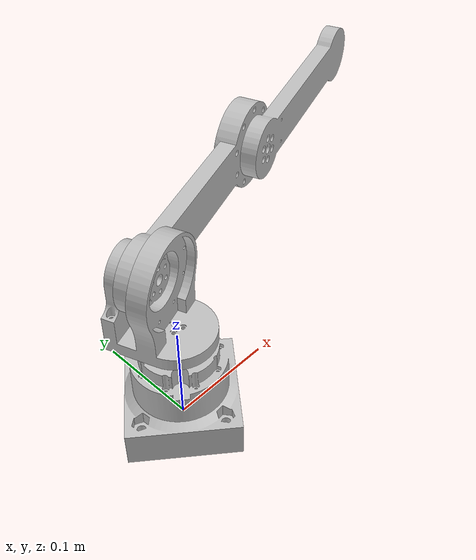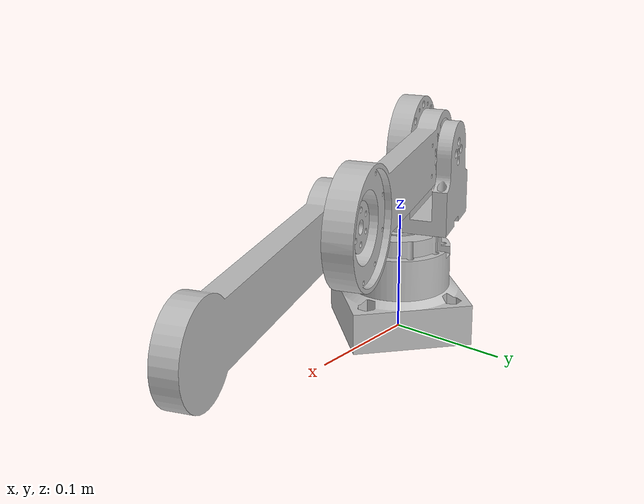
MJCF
<mujoco model="arm">
  <compiler angle="degree" meshdir="./assets"/>

  <option integrator="implicitfast"/>
  <option cone="elliptic" impratio="10"/>

  <default>
    <default class="arm">
      <default class="arm/visual">
        <geom type="mesh" contype="0" conaffinity="0" group="2" rgba="0.75294 0.75294 0.75294 1"/>
      </default>
      <default class="arm/collision">
        <geom type="mesh" group="3"/>
      </default>
    </default>
    <site size="0.001" rgba="0.5 0.5 0.5 0.3" group="4"/>
  </default>

  <asset>
    <mesh name="arm/base_link" file="base_link.STL"/>
    <mesh name="arm/link1" file="link1.STL"/>
    <mesh name="arm/link2" file="link2.STL"/>
    <mesh name="arm/link3" file="link3.STL"/>
  </asset>

  <worldbody>
    <body name="base_link" pos="0 0 0">
        <geom class="arm/visual" mesh="arm/base_link"/>
        <geom class="arm/collision" mesh="arm/base_link"/>
        <!-- link1 -->
        <body name="link1" pos="0 0 0.067">
            <joint name="joint1" type="hinge" axis="0 0 1" damping="0.0"/>
            <geom class="arm/visual" mesh="arm/link1"/>
            <geom class="arm/collision" mesh="arm/link1"/>
            <!-- link2 -->
            <body name="link2" pos="-0.0041 0.0113 0.093" euler="-90 -20 0">
                <joint name="joint2" type="hinge" axis="0 0 1" damping="0.0"/>
                <geom class="arm/visual" mesh="arm/link2"/>
                <geom class="arm/collision" mesh="arm/link2"/>
                <!-- link3 -->
                <body name="link3" pos="0.2 0 0.019" euler="0 0 0">
                    <joint name="joint3" type="hinge" axis="0 0 1" damping="0.0"/>
                    <geom class="arm/visual" mesh="arm/link3"/>
                    <geom class="arm/collision" mesh="arm/link3"/>
                </body>
            </body>
        </body>
    </body>
  </worldbody>

  <actuator>
    <motor name="motor1" joint="joint1" gear="1" ctrlrange="-0 0"/>
    <motor name="motor2" joint="joint2" gear="1" ctrlrange="-0 0"/>
    <motor name="motor3" joint="joint3" gear="1" ctrlrange="-0 0"/>
  </actuator>
</mujoco>
